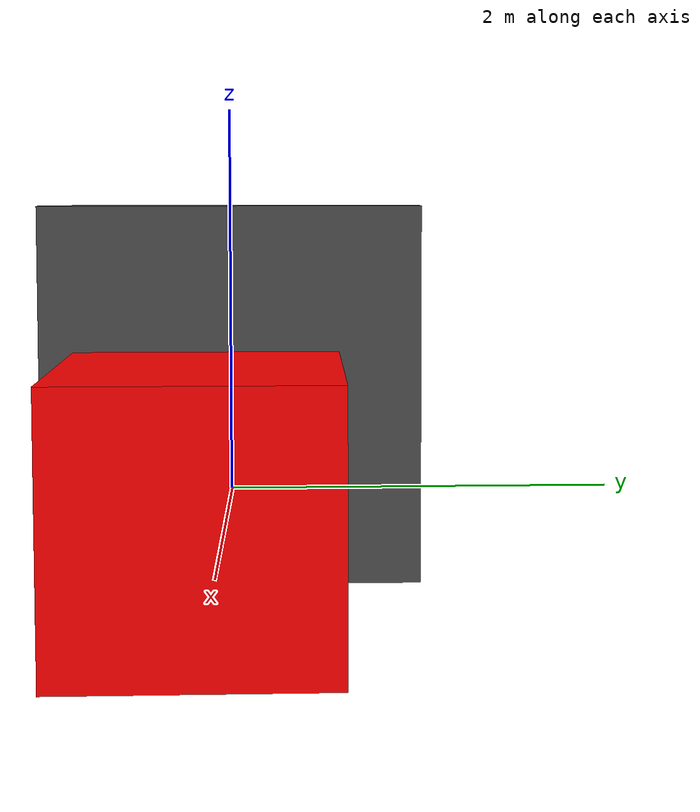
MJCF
<mujoco>
  <!-- Task guidance: Run the collision trials and compare pre- and post-collision kinetic energy or rebound behavior. Choose the numeric id only after observing which setup preserves kinetic energy. -->
  <option gravity="0 0 -9.81" />
  <worldbody>
    <light diffuse="0.5 0.5 0.5" pos="0 0 5" dir="0 0 -1" />
    <body name="object_4" pos="0 0 -10">
      <geom type="plane" size="50 50 0.1" rgba="0.9 0.9 0.9 1" friction="1 1 1" />
    </body>
    <body name="object_3" pos="0 0 0.5">
      <geom type="box" size="0.1 1 1" rgba="0.3 0.3 0.3 1" />
    </body>
    <body name="object_1" pos="-3 0 0.5">
      <geom type="box" size="0.5 0.5 0.5" mass="1" rgba="0 1 0 1" />
      <joint type="free" name="object_1_joint" />
    </body>
    <body name="object_2" pos="3 0 0.5">
      <geom type="box" size="0.5 0.5 0.5" mass="1" rgba="1 0 0 1" />
      <joint type="free" name="object_2_joint" />
    </body>
  </worldbody>
</mujoco>
